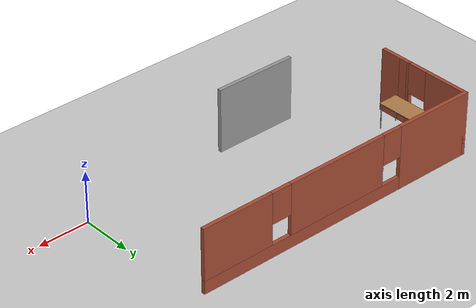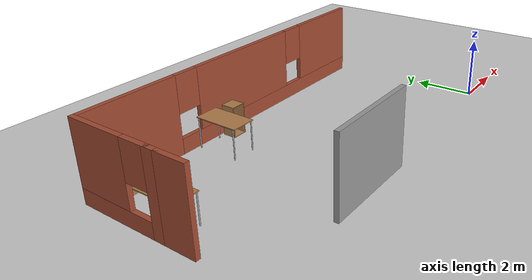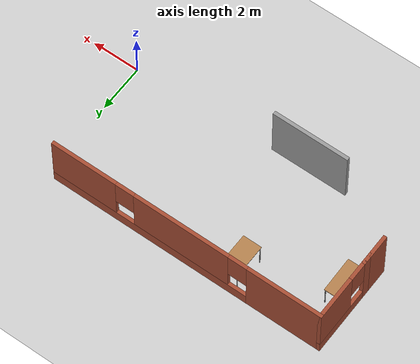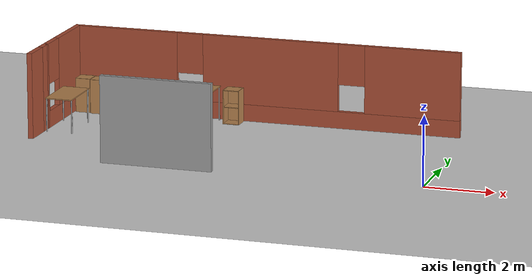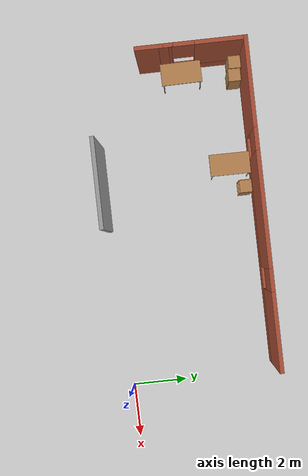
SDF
<sdf version="1.6">
 <world name="default">
  <model name="ground_plane">
   <static>1</static>
   <link name="link">
    <collision name="collision">
     <geometry><plane><normal>0 0 1</normal><size>100 100</size></plane></geometry>
     <surface><friction><ode><mu>100</mu><mu2>50</mu2></ode></friction></surface>
    </collision>
    <visual name="visual">
     <cast_shadows>0</cast_shadows>
     <geometry><plane><normal>0 0 1</normal><size>100 100</size></plane></geometry>
     <material>
      <script><uri>file://media/materials/scripts/gazebo.material</uri><name>Gazebo/Grey</name></script>
     </material>
    </visual>
   </link>
  </model>
  <model name="Building">
   <link name="Wall_37">
    <pose>-5.83944 2.575 0 0 -0 1.5708</pose>
    <visual name="Wall_37_Visual">
     <pose>0 0 1.25 0 -0 0</pose>
     <geometry><box><size>1 0.15 2.5</size></box></geometry>
     <material>
      <script><uri>file://media/materials/scripts/gazebo.material</uri><name>Gazebo/Bricks</name></script>
      <ambient>1 1 1 1</ambient>
      <shader type="pixel"/>
      <diffuse>1 1 1 1</diffuse>
      <specular>0.2 0.2 0.2 1</specular>
      <emissive>0 0 0 1</emissive>
     </material>
     <meta><layer>0</layer></meta>
    </visual>
    <collision name="Wall_37_Collision">
     <pose>0 0 1.25 0 -0 0</pose>
     <geometry><box><size>1 0.15 2.5</size></box></geometry>
     <surface>
      <friction>
       <ode><mu>1</mu><mu2>1</mu2><fdir1>0 0 0</fdir1><slip1>0</slip1><slip2>0</slip2></ode>
       <torsional>
        <coefficient>1</coefficient>
        <patch_radius>0</patch_radius>
        <surface_radius>0</surface_radius>
        <use_patch_radius>1</use_patch_radius>
        <ode><slip>0</slip></ode>
       </torsional>
      </friction>
      <bounce><restitution_coefficient>0</restitution_coefficient><threshold>1e+06</threshold></bounce>
      <contact>
       <collide_without_contact>0</collide_without_contact>
       <collide_without_contact_bitmask>1</collide_without_contact_bitmask>
       <collide_bitmask>1</collide_bitmask>
       <ode>
        <soft_cfm>0</soft_cfm>
        <soft_erp>0.2</soft_erp>
        <kp>1e+13</kp>
        <kd>1</kd>
        <max_vel>0.01</max_vel>
        <min_depth>0</min_depth>
       </ode>
       <bullet>
        <split_impulse>1</split_impulse>
        <split_impulse_penetration_threshold>-0.01</split_impulse_penetration_threshold>
        <soft_cfm>0</soft_cfm>
        <soft_erp>0.2</soft_erp>
        <kp>1e+13</kp>
        <kd>1</kd>
       </bullet>
      </contact>
     </surface>
    </collision>
   </link>
   <link name="Wall_38">
    <pose>-5.83944 3.175 0 0 -0 1.5708</pose>
    <visual name="Wall_38_Visual">
     <pose>0 0 1.25 0 -0 0</pose>
     <geometry><box><size>0.5 0.15 2.5</size></box></geometry>
     <material>
      <script><uri>file://media/materials/scripts/gazebo.material</uri><name>Gazebo/Bricks</name></script>
      <ambient>1 1 1 1</ambient>
      <shader type="pixel"/>
      <diffuse>1 1 1 1</diffuse>
      <specular>0.2 0.2 0.2 1</specular>
      <emissive>0 0 0 1</emissive>
     </material>
     <meta><layer>0</layer></meta>
    </visual>
    <collision name="Wall_38_Collision">
     <pose>0 0 1.25 0 -0 0</pose>
     <geometry><box><size>0.5 0.15 2.5</size></box></geometry>
     <surface>
      <friction>
       <ode><mu>1</mu><mu2>1</mu2><fdir1>0 0 0</fdir1><slip1>0</slip1><slip2>0</slip2></ode>
       <torsional>
        <coefficient>1</coefficient>
        <patch_radius>0</patch_radius>
        <surface_radius>0</surface_radius>
        <use_patch_radius>1</use_patch_radius>
        <ode><slip>0</slip></ode>
       </torsional>
      </friction>
      <bounce><restitution_coefficient>0</restitution_coefficient><threshold>1e+06</threshold></bounce>
      <contact>
       <collide_without_contact>0</collide_without_contact>
       <collide_without_contact_bitmask>1</collide_without_contact_bitmask>
       <collide_bitmask>1</collide_bitmask>
       <ode>
        <soft_cfm>0</soft_cfm>
        <soft_erp>0.2</soft_erp>
        <kp>1e+13</kp>
        <kd>1</kd>
        <max_vel>0.01</max_vel>
        <min_depth>0</min_depth>
       </ode>
       <bullet>
        <split_impulse>1</split_impulse>
        <split_impulse_penetration_threshold>-0.01</split_impulse_penetration_threshold>
        <soft_cfm>0</soft_cfm>
        <soft_erp>0.2</soft_erp>
        <kp>1e+13</kp>
        <kd>1</kd>
       </bullet>
      </contact>
     </surface>
    </collision>
   </link>
   <link name="Wall_44">
    <pose>-5.83944 4.65 0 0 -0 1.5708</pose>
    <visual name="Wall_44_Visual_0">
     <pose>-1.32648 0 1.25 0 -0 0</pose>
     <geometry><box><size>0.097044 0.15 2.5</size></box></geometry>
     <material>
      <script><uri>file://media/materials/scripts/gazebo.material</uri><name>Gazebo/Bricks</name></script>
      <ambient>1 1 1 1</ambient>
      <shader type="pixel"/>
      <diffuse>1 1 1 1</diffuse>
      <specular>0.2 0.2 0.2 1</specular>
      <emissive>0 0 0 1</emissive>
     </material>
     <meta><layer>0</layer></meta>
    </visual>
    <visual name="Wall_44_Visual_1">
     <pose>0.048522 0 0.25 0 -0 0</pose>
     <geometry><box><size>2.65296 0.15 0.5</size></box></geometry>
     <material>
      <script><uri>file://media/materials/scripts/gazebo.material</uri><name>Gazebo/Bricks</name></script>
      <ambient>1 1 1 1</ambient>
      <shader type="pixel"/>
      <diffuse>1 1 1 1</diffuse>
      <specular>0.2 0.2 0.2 1</specular>
      <emissive>0 0 0 1</emissive>
     </material>
     <meta><layer>0</layer></meta>
    </visual>
    <visual name="Wall_44_Visual_2">
     <pose>0.448522 0 1.5 0 -0 0</pose>
     <geometry><box><size>1.85296 0.15 2</size></box></geometry>
     <material>
      <script><uri>file://media/materials/scripts/gazebo.material</uri><name>Gazebo/Bricks</name></script>
      <ambient>1 1 1 1</ambient>
      <shader type="pixel"/>
      <diffuse>1 1 1 1</diffuse>
      <specular>0.2 0.2 0.2 1</specular>
      <emissive>0 0 0 1</emissive>
     </material>
     <meta><layer>0</layer></meta>
    </visual>
    <visual name="Wall_44_Visual_3">
     <pose>-0.877956 0 1.9 0 -0 0</pose>
     <geometry><box><size>0.8 0.15 1.2</size></box></geometry>
     <material>
      <script><uri>file://media/materials/scripts/gazebo.material</uri><name>Gazebo/Bricks</name></script>
      <ambient>1 1 1 1</ambient>
      <shader type="pixel"/>
      <diffuse>1 1 1 1</diffuse>
      <specular>0.2 0.2 0.2 1</specular>
      <emissive>0 0 0 1</emissive>
     </material>
     <meta><layer>0</layer></meta>
    </visual>
    <collision name="Wall_44_Collision_0">
     <pose>-1.32648 0 1.25 0 -0 0</pose>
     <geometry><box><size>0.097044 0.15 2.5</size></box></geometry>
     <surface>
      <friction>
       <ode><mu>1</mu><mu2>1</mu2><fdir1>0 0 0</fdir1><slip1>0</slip1><slip2>0</slip2></ode>
       <torsional>
        <coefficient>1</coefficient>
        <patch_radius>0</patch_radius>
        <surface_radius>0</surface_radius>
        <use_patch_radius>1</use_patch_radius>
        <ode><slip>0</slip></ode>
       </torsional>
      </friction>
      <bounce><restitution_coefficient>0</restitution_coefficient><threshold>1e+06</threshold></bounce>
      <contact>
       <collide_without_contact>0</collide_without_contact>
       <collide_without_contact_bitmask>1</collide_without_contact_bitmask>
       <collide_bitmask>1</collide_bitmask>
       <ode>
        <soft_cfm>0</soft_cfm>
        <soft_erp>0.2</soft_erp>
        <kp>1e+13</kp>
        <kd>1</kd>
        <max_vel>0.01</max_vel>
        <min_depth>0</min_depth>
       </ode>
       <bullet>
        <split_impulse>1</split_impulse>
        <split_impulse_penetration_threshold>-0.01</split_impulse_penetration_threshold>
        <soft_cfm>0</soft_cfm>
        <soft_erp>0.2</soft_erp>
        <kp>1e+13</kp>
        <kd>1</kd>
       </bullet>
      </contact>
     </surface>
    </collision>
    <collision name="Wall_44_Collision_1">
     <pose>0.048522 0 0.25 0 -0 0</pose>
     <geometry><box><size>2.65296 0.15 0.5</size></box></geometry>
     <surface>
      <friction>
       <ode><mu>1</mu><mu2>1</mu2><fdir1>0 0 0</fdir1><slip1>0</slip1><slip2>0</slip2></ode>
       <torsional>
        <coefficient>1</coefficient>
        <patch_radius>0</patch_radius>
        <surface_radius>0</surface_radius>
        <use_patch_radius>1</use_patch_radius>
        <ode><slip>0</slip></ode>
       </torsional>
      </friction>
      <bounce><restitution_coefficient>0</restitution_coefficient><threshold>1e+06</threshold></bounce>
      <contact>
       <collide_without_contact>0</collide_without_contact>
       <collide_without_contact_bitmask>1</collide_without_contact_bitmask>
       <collide_bitmask>1</collide_bitmask>
       <ode>
        <soft_cfm>0</soft_cfm>
        <soft_erp>0.2</soft_erp>
        <kp>1e+13</kp>
        <kd>1</kd>
        <max_vel>0.01</max_vel>
        <min_depth>0</min_depth>
       </ode>
       <bullet>
        <split_impulse>1</split_impulse>
        <split_impulse_penetration_threshold>-0.01</split_impulse_penetration_threshold>
        <soft_cfm>0</soft_cfm>
        <soft_erp>0.2</soft_erp>
        <kp>1e+13</kp>
        <kd>1</kd>
       </bullet>
      </contact>
     </surface>
    </collision>
    <collision name="Wall_44_Collision_2">
     <pose>0.448522 0 1.5 0 -0 0</pose>
     <geometry><box><size>1.85296 0.15 2</size></box></geometry>
     <surface>
      <friction>
       <ode><mu>1</mu><mu2>1</mu2><fdir1>0 0 0</fdir1><slip1>0</slip1><slip2>0</slip2></ode>
       <torsional>
        <coefficient>1</coefficient>
        <patch_radius>0</patch_radius>
        <surface_radius>0</surface_radius>
        <use_patch_radius>1</use_patch_radius>
        <ode><slip>0</slip></ode>
       </torsional>
      </friction>
      <bounce><restitution_coefficient>0</restitution_coefficient><threshold>1e+06</threshold></bounce>
      <contact>
       <collide_without_contact>0</collide_without_contact>
       <collide_without_contact_bitmask>1</collide_without_contact_bitmask>
       <collide_bitmask>1</collide_bitmask>
       <ode>
        <soft_cfm>0</soft_cfm>
        <soft_erp>0.2</soft_erp>
        <kp>1e+13</kp>
        <kd>1</kd>
        <max_vel>0.01</max_vel>
        <min_depth>0</min_depth>
       </ode>
       <bullet>
        <split_impulse>1</split_impulse>
        <split_impulse_penetration_threshold>-0.01</split_impulse_penetration_threshold>
        <soft_cfm>0</soft_cfm>
        <soft_erp>0.2</soft_erp>
        <kp>1e+13</kp>
        <kd>1</kd>
       </bullet>
      </contact>
     </surface>
    </collision>
    <collision name="Wall_44_Collision_3">
     <pose>-0.877956 0 1.9 0 -0 0</pose>
     <geometry><box><size>0.8 0.15 1.2</size></box></geometry>
     <surface>
      <friction>
       <ode><mu>1</mu><mu2>1</mu2><fdir1>0 0 0</fdir1><slip1>0</slip1><slip2>0</slip2></ode>
       <torsional>
        <coefficient>1</coefficient>
        <patch_radius>0</patch_radius>
        <surface_radius>0</surface_radius>
        <use_patch_radius>1</use_patch_radius>
        <ode><slip>0</slip></ode>
       </torsional>
      </friction>
      <bounce><restitution_coefficient>0</restitution_coefficient><threshold>1e+06</threshold></bounce>
      <contact>
       <collide_without_contact>0</collide_without_contact>
       <collide_without_contact_bitmask>1</collide_without_contact_bitmask>
       <collide_bitmask>1</collide_bitmask>
       <ode>
        <soft_cfm>0</soft_cfm>
        <soft_erp>0.2</soft_erp>
        <kp>1e+13</kp>
        <kd>1</kd>
        <max_vel>0.01</max_vel>
        <min_depth>0</min_depth>
       </ode>
       <bullet>
        <split_impulse>1</split_impulse>
        <split_impulse_penetration_threshold>-0.01</split_impulse_penetration_threshold>
        <soft_cfm>0</soft_cfm>
        <soft_erp>0.2</soft_erp>
        <kp>1e+13</kp>
        <kd>1</kd>
       </bullet>
      </contact>
     </surface>
    </collision>
   </link>
   <link name="Wall_45">
    <pose>-0.039438 5.95 0 0 -0 0</pose>
    <visual name="Wall_45_Visual_0">
     <pose>-4.27757 0 1.25 0 -0 0</pose>
     <geometry><box><size>3.19486 0.15 2.5</size></box></geometry>
     <material>
      <script><uri>file://media/materials/scripts/gazebo.material</uri><name>Gazebo/Bricks</name></script>
      <ambient>1 1 1 1</ambient>
      <shader type="pixel"/>
      <diffuse>1 1 1 1</diffuse>
      <specular>0.2 0.2 0.2 1</specular>
      <emissive>0 0 0 1</emissive>
     </material>
     <meta><layer>0</layer></meta>
    </visual>
    <visual name="Wall_45_Visual_1">
     <pose>1.59743 0 0.25 0 -0 0</pose>
     <geometry><box><size>8.55514 0.15 0.5</size></box></geometry>
     <material>
      <script><uri>file://media/materials/scripts/gazebo.material</uri><name>Gazebo/Bricks</name></script>
      <ambient>1 1 1 1</ambient>
      <shader type="pixel"/>
      <diffuse>1 1 1 1</diffuse>
      <specular>0.2 0.2 0.2 1</specular>
      <emissive>0 0 0 1</emissive>
     </material>
     <meta><layer>0</layer></meta>
    </visual>
    <visual name="Wall_45_Visual_2">
     <pose>0.177134 0 1.5 0 -0 0</pose>
     <geometry><box><size>4.11454 0.15 2</size></box></geometry>
     <material>
      <script><uri>file://media/materials/scripts/gazebo.material</uri><name>Gazebo/Bricks</name></script>
      <ambient>1 1 1 1</ambient>
      <shader type="pixel"/>
      <diffuse>1 1 1 1</diffuse>
      <specular>0.2 0.2 0.2 1</specular>
      <emissive>0 0 0 1</emissive>
     </material>
     <meta><layer>0</layer></meta>
    </visual>
    <visual name="Wall_45_Visual_3">
     <pose>4.4547 0 1.5 0 -0 0</pose>
     <geometry><box><size>2.8406 0.15 2</size></box></geometry>
     <material>
      <script><uri>file://media/materials/scripts/gazebo.material</uri><name>Gazebo/Bricks</name></script>
      <ambient>1 1 1 1</ambient>
      <shader type="pixel"/>
      <diffuse>1 1 1 1</diffuse>
      <specular>0.2 0.2 0.2 1</specular>
      <emissive>0 0 0 1</emissive>
     </material>
     <meta><layer>0</layer></meta>
    </visual>
    <visual name="Wall_45_Visual_4">
     <pose>-2.28014 0 1.9 0 -0 0</pose>
     <geometry><box><size>0.8 0.15 1.2</size></box></geometry>
     <material>
      <script><uri>file://media/materials/scripts/gazebo.material</uri><name>Gazebo/Bricks</name></script>
      <ambient>1 1 1 1</ambient>
      <shader type="pixel"/>
      <diffuse>1 1 1 1</diffuse>
      <specular>0.2 0.2 0.2 1</specular>
      <emissive>0 0 0 1</emissive>
     </material>
     <meta><layer>0</layer></meta>
    </visual>
    <visual name="Wall_45_Visual_5">
     <pose>2.6344 0 1.9 0 -0 0</pose>
     <geometry><box><size>0.8 0.15 1.2</size></box></geometry>
     <material>
      <script><uri>file://media/materials/scripts/gazebo.material</uri><name>Gazebo/Bricks</name></script>
      <ambient>1 1 1 1</ambient>
      <shader type="pixel"/>
      <diffuse>1 1 1 1</diffuse>
      <specular>0.2 0.2 0.2 1</specular>
      <emissive>0 0 0 1</emissive>
     </material>
     <meta><layer>0</layer></meta>
    </visual>
    <collision name="Wall_45_Collision_4">
     <pose>-2.28014 0 1.9 0 -0 0</pose>
     <geometry><box><size>0.8 0.15 1.2</size></box></geometry>
     <surface>
      <friction>
       <ode><mu>1</mu><mu2>1</mu2><fdir1>0 0 0</fdir1><slip1>0</slip1><slip2>0</slip2></ode>
       <torsional>
        <coefficient>1</coefficient>
        <patch_radius>0</patch_radius>
        <surface_radius>0</surface_radius>
        <use_patch_radius>1</use_patch_radius>
        <ode><slip>0</slip></ode>
       </torsional>
      </friction>
      <bounce><restitution_coefficient>0</restitution_coefficient><threshold>1e+06</threshold></bounce>
      <contact>
       <collide_without_contact>0</collide_without_contact>
       <collide_without_contact_bitmask>1</collide_without_contact_bitmask>
       <collide_bitmask>1</collide_bitmask>
       <ode>
        <soft_cfm>0</soft_cfm>
        <soft_erp>0.2</soft_erp>
        <kp>1e+13</kp>
        <kd>1</kd>
        <max_vel>0.01</max_vel>
        <min_depth>0</min_depth>
       </ode>
       <bullet>
        <split_impulse>1</split_impulse>
        <split_impulse_penetration_threshold>-0.01</split_impulse_penetration_threshold>
        <soft_cfm>0</soft_cfm>
        <soft_erp>0.2</soft_erp>
        <kp>1e+13</kp>
        <kd>1</kd>
       </bullet>
      </contact>
     </surface>
    </collision>
    <collision name="Wall_45_Collision_5">
     <pose>2.6344 0 1.9 0 -0 0</pose>
     <geometry><box><size>0.8 0.15 1.2</size></box></geometry>
     <surface>
      <friction>
       <ode><mu>1</mu><mu2>1</mu2><fdir1>0 0 0</fdir1><slip1>0</slip1><slip2>0</slip2></ode>
       <torsional>
        <coefficient>1</coefficient>
        <patch_radius>0</patch_radius>
        <surface_radius>0</surface_radius>
        <use_patch_radius>1</use_patch_radius>
        <ode><slip>0</slip></ode>
       </torsional>
      </friction>
      <bounce><restitution_coefficient>0</restitution_coefficient><threshold>1e+06</threshold></bounce>
      <contact>
       <collide_without_contact>0</collide_without_contact>
       <collide_without_contact_bitmask>1</collide_without_contact_bitmask>
       <collide_bitmask>1</collide_bitmask>
       <ode>
        <soft_cfm>0</soft_cfm>
        <soft_erp>0.2</soft_erp>
        <kp>1e+13</kp>
        <kd>1</kd>
        <max_vel>0.01</max_vel>
        <min_depth>0</min_depth>
       </ode>
       <bullet>
        <split_impulse>1</split_impulse>
        <split_impulse_penetration_threshold>-0.01</split_impulse_penetration_threshold>
        <soft_cfm>0</soft_cfm>
        <soft_erp>0.2</soft_erp>
        <kp>1e+13</kp>
        <kd>1</kd>
       </bullet>
      </contact>
     </surface>
    </collision>
    <collision name="Wall_45_Collision_0">
     <pose>-4.27757 0 1.25 0 -0 0</pose>
     <geometry><box><size>3.19486 0.15 2.5</size></box></geometry>
     <surface>
      <friction>
       <ode><mu>1</mu><mu2>1</mu2><fdir1>0 0 0</fdir1><slip1>0</slip1><slip2>0</slip2></ode>
       <torsional>
        <coefficient>1</coefficient>
        <patch_radius>0</patch_radius>
        <surface_radius>0</surface_radius>
        <use_patch_radius>1</use_patch_radius>
        <ode><slip>0</slip></ode>
       </torsional>
      </friction>
      <bounce><restitution_coefficient>0</restitution_coefficient><threshold>1e+06</threshold></bounce>
      <contact>
       <collide_without_contact>0</collide_without_contact>
       <collide_without_contact_bitmask>1</collide_without_contact_bitmask>
       <collide_bitmask>1</collide_bitmask>
       <ode>
        <soft_cfm>0</soft_cfm>
        <soft_erp>0.2</soft_erp>
        <kp>1e+13</kp>
        <kd>1</kd>
        <max_vel>0.01</max_vel>
        <min_depth>0</min_depth>
       </ode>
       <bullet>
        <split_impulse>1</split_impulse>
        <split_impulse_penetration_threshold>-0.01</split_impulse_penetration_threshold>
        <soft_cfm>0</soft_cfm>
        <soft_erp>0.2</soft_erp>
        <kp>1e+13</kp>
        <kd>1</kd>
       </bullet>
      </contact>
     </surface>
    </collision>
    <collision name="Wall_45_Collision_1">
     <pose>1.59743 0 0.25 0 -0 0</pose>
     <geometry><box><size>8.55514 0.15 0.5</size></box></geometry>
     <surface>
      <friction>
       <ode><mu>1</mu><mu2>1</mu2><fdir1>0 0 0</fdir1><slip1>0</slip1><slip2>0</slip2></ode>
       <torsional>
        <coefficient>1</coefficient>
        <patch_radius>0</patch_radius>
        <surface_radius>0</surface_radius>
        <use_patch_radius>1</use_patch_radius>
        <ode><slip>0</slip></ode>
       </torsional>
      </friction>
      <bounce><restitution_coefficient>0</restitution_coefficient><threshold>1e+06</threshold></bounce>
      <contact>
       <collide_without_contact>0</collide_without_contact>
       <collide_without_contact_bitmask>1</collide_without_contact_bitmask>
       <collide_bitmask>1</collide_bitmask>
       <ode>
        <soft_cfm>0</soft_cfm>
        <soft_erp>0.2</soft_erp>
        <kp>1e+13</kp>
        <kd>1</kd>
        <max_vel>0.01</max_vel>
        <min_depth>0</min_depth>
       </ode>
       <bullet>
        <split_impulse>1</split_impulse>
        <split_impulse_penetration_threshold>-0.01</split_impulse_penetration_threshold>
        <soft_cfm>0</soft_cfm>
        <soft_erp>0.2</soft_erp>
        <kp>1e+13</kp>
        <kd>1</kd>
       </bullet>
      </contact>
     </surface>
    </collision>
    <collision name="Wall_45_Collision_3">
     <pose>4.4547 0 1.5 0 -0 0</pose>
     <geometry><box><size>2.8406 0.15 2</size></box></geometry>
     <surface>
      <friction>
       <ode><mu>1</mu><mu2>1</mu2><fdir1>0 0 0</fdir1><slip1>0</slip1><slip2>0</slip2></ode>
       <torsional>
        <coefficient>1</coefficient>
        <patch_radius>0</patch_radius>
        <surface_radius>0</surface_radius>
        <use_patch_radius>1</use_patch_radius>
        <ode><slip>0</slip></ode>
       </torsional>
      </friction>
      <bounce><restitution_coefficient>0</restitution_coefficient><threshold>1e+06</threshold></bounce>
      <contact>
       <collide_without_contact>0</collide_without_contact>
       <collide_without_contact_bitmask>1</collide_without_contact_bitmask>
       <collide_bitmask>1</collide_bitmask>
       <ode>
        <soft_cfm>0</soft_cfm>
        <soft_erp>0.2</soft_erp>
        <kp>1e+13</kp>
        <kd>1</kd>
        <max_vel>0.01</max_vel>
        <min_depth>0</min_depth>
       </ode>
       <bullet>
        <split_impulse>1</split_impulse>
        <split_impulse_penetration_threshold>-0.01</split_impulse_penetration_threshold>
        <soft_cfm>0</soft_cfm>
        <soft_erp>0.2</soft_erp>
        <kp>1e+13</kp>
        <kd>1</kd>
       </bullet>
      </contact>
     </surface>
    </collision>
    <collision name="Wall_45_Collision_2">
     <pose>0.177134 0 1.5 0 -0 0</pose>
     <geometry><box><size>4.11454 0.15 2</size></box></geometry>
     <surface>
      <friction>
       <ode><mu>1</mu><mu2>1</mu2><fdir1>0 0 0</fdir1><slip1>0</slip1><slip2>0</slip2></ode>
       <torsional>
        <coefficient>1</coefficient>
        <patch_radius>0</patch_radius>
        <surface_radius>0</surface_radius>
        <use_patch_radius>1</use_patch_radius>
        <ode><slip>0</slip></ode>
       </torsional>
      </friction>
      <bounce><restitution_coefficient>0</restitution_coefficient><threshold>1e+06</threshold></bounce>
      <contact>
       <collide_without_contact>0</collide_without_contact>
       <collide_without_contact_bitmask>1</collide_without_contact_bitmask>
       <collide_bitmask>1</collide_bitmask>
       <ode>
        <soft_cfm>0</soft_cfm>
        <soft_erp>0.2</soft_erp>
        <kp>1e+13</kp>
        <kd>1</kd>
        <max_vel>0.01</max_vel>
        <min_depth>0</min_depth>
       </ode>
       <bullet>
        <split_impulse>1</split_impulse>
        <split_impulse_penetration_threshold>-0.01</split_impulse_penetration_threshold>
        <soft_cfm>0</soft_cfm>
        <soft_erp>0.2</soft_erp>
        <kp>1e+13</kp>
        <kd>1</kd>
       </bullet>
      </contact>
     </surface>
    </collision>
   </link>
   <link name="Wall_5">
    <pose>-1.38944 0.3 0 0 -0 3.14159</pose>
    <visual name="Wall_5_Visual">
     <pose>0 0 1.25 0 -0 0</pose>
     <geometry><box><size>3.25 0.15 2.5</size></box></geometry>
     <material>
      <script><uri>file://media/materials/scripts/gazebo.material</uri><name>Gazebo/Grey</name></script>
      <ambient>1 1 1 1</ambient>
      <shader type="pixel"/>
      <diffuse>0.7 0.7 0.7 1</diffuse>
      <specular>0.01 0.01 0.01 1</specular>
      <emissive>0 0 0 1</emissive>
     </material>
     <meta><layer>0</layer></meta>
    </visual>
    <collision name="Wall_5_Collision">
     <pose>0 0 1.25 0 -0 0</pose>
     <geometry><box><size>3.25 0.15 2.5</size></box></geometry>
     <surface>
      <friction>
       <ode><mu>1</mu><mu2>1</mu2><fdir1>0 0 0</fdir1><slip1>0</slip1><slip2>0</slip2></ode>
       <torsional>
        <coefficient>1</coefficient>
        <patch_radius>0</patch_radius>
        <surface_radius>0</surface_radius>
        <use_patch_radius>1</use_patch_radius>
        <ode><slip>0</slip></ode>
       </torsional>
      </friction>
      <bounce><restitution_coefficient>0</restitution_coefficient><threshold>1e+06</threshold></bounce>
      <contact>
       <collide_without_contact>0</collide_without_contact>
       <collide_without_contact_bitmask>1</collide_without_contact_bitmask>
       <collide_bitmask>1</collide_bitmask>
       <ode>
        <soft_cfm>0</soft_cfm>
        <soft_erp>0.2</soft_erp>
        <kp>1e+13</kp>
        <kd>1</kd>
        <max_vel>0.01</max_vel>
        <min_depth>0</min_depth>
       </ode>
       <bullet>
        <split_impulse>1</split_impulse>
        <split_impulse_penetration_threshold>-0.01</split_impulse_penetration_threshold>
        <soft_cfm>0</soft_cfm>
        <soft_erp>0.2</soft_erp>
        <kp>1e+13</kp>
        <kd>1</kd>
       </bullet>
      </contact>
     </surface>
    </collision>
   </link>
   <static>1</static>
   <pose>-6.1852 -0.576906 0 0 -0 0</pose>
  </model>
  <model name="cabinet">
   <static>1</static>
   <link name="cabinet_bottom_plate">
    <inertial>
     <pose>0 0 -1 0 -0 0</pose>
     <inertia><ixx>2.05</ixx><ixy>0</ixy><ixz>0</ixz><iyy>2.05</iyy><iyz>0</iyz><izz>2.05</izz></inertia>
     <mass>25</mass>
    </inertial>
    <collision name="cabinet_bottom_plate_geom">
     <pose>0 0 0.01 0 -0 0</pose>
     <geometry><box><size>0.45 0.45 0.02</size></box></geometry>
    </collision>
    <visual name="cabinet_bottom_plate_geom_visual">
     <pose>0 0 0.01 0 -0 0</pose>
     <geometry><box><size>0.45 0.45 0.02</size></box></geometry>
     <material>
      <script><uri>file://media/materials/scripts/gazebo.material</uri><name>Gazebo/Wood</name></script>
     </material>
    </visual>
    <collision name="cabinet_bottom_plate_geom_cabinet_back_plate">
     <pose>0.235 0 0.51 0 -0 0</pose>
     <geometry><box><size>0.02 0.45 1.02</size></box></geometry>
    </collision>
    <visual name="cabinet_bottom_plate_geom_cabinet_back_plate_visual">
     <pose>0.235 0 0.51 0 -0 0</pose>
     <geometry><box><size>0.02 0.45 1.02</size></box></geometry>
     <material>
      <script><uri>file://media/materials/scripts/gazebo.material</uri><name>Gazebo/Wood</name></script>
     </material>
    </visual>
    <collision name="cabinet_bottom_plate_geom_cabinet_left_plate">
     <pose>0 0.235 0.51 0 -0 0</pose>
     <geometry><box><size>0.45 0.02 1.02</size></box></geometry>
    </collision>
    <visual name="cabinet_bottom_plate_geom_cabinet_left_plate_visual">
     <pose>0 0.235 0.51 0 -0 0</pose>
     <geometry><box><size>0.45 0.02 1.02</size></box></geometry>
     <material>
      <script><uri>file://media/materials/scripts/gazebo.material</uri><name>Gazebo/Wood</name></script>
     </material>
    </visual>
    <collision name="cabinet_bottom_plate_geom_cabinet_middle_plate">
     <pose>0 0 0.51 0 -0 0</pose>
     <geometry><box><size>0.45 0.45 0.02</size></box></geometry>
    </collision>
    <visual name="cabinet_bottom_plate_geom_cabinet_middle_plate_visual">
     <pose>0 0 0.51 0 -0 0</pose>
     <geometry><box><size>0.45 0.45 0.02</size></box></geometry>
     <material>
      <script><uri>file://media/materials/scripts/gazebo.material</uri><name>Gazebo/Wood</name></script>
     </material>
    </visual>
    <collision name="cabinet_bottom_plate_geom_cabinet_right_plate">
     <pose>0 -0.235 0.51 0 -0 0</pose>
     <geometry><box><size>0.45 0.02 1.02</size></box></geometry>
    </collision>
    <visual name="cabinet_bottom_plate_geom_cabinet_right_plate_visual">
     <pose>0 -0.235 0.51 0 -0 0</pose>
     <geometry><box><size>0.45 0.02 1.02</size></box></geometry>
     <material>
      <script><uri>file://media/materials/scripts/gazebo.material</uri><name>Gazebo/Wood</name></script>
     </material>
    </visual>
    <collision name="cabinet_bottom_plate_geom_cabinet_top_plate">
     <pose>0 0 1.01 0 -0 0</pose>
     <geometry><box><size>0.45 0.45 0.02</size></box></geometry>
    </collision>
    <visual name="cabinet_bottom_plate_geom_cabinet_top_plate_visual">
     <pose>0 0 1.01 0 -0 0</pose>
     <geometry><box><size>0.45 0.45 0.02</size></box></geometry>
     <material>
      <script><uri>file://media/materials/scripts/gazebo.material</uri><name>Gazebo/Wood</name></script>
     </material>
    </visual>
   </link>
   <pose>-11.6909 5.06677 0 0 -0 0</pose>
  </model>
  <model name="cabinet_0">
   <static>1</static>
   <link name="cabinet_bottom_plate">
    <inertial>
     <pose>0 0 -1 0 -0 0</pose>
     <inertia><ixx>2.05</ixx><ixy>0</ixy><ixz>0</ixz><iyy>2.05</iyy><iyz>0</iyz><izz>2.05</izz></inertia>
     <mass>25</mass>
    </inertial>
    <collision name="cabinet_bottom_plate_geom">
     <pose>0 0 0.01 0 -0 0</pose>
     <geometry><box><size>0.45 0.45 0.02</size></box></geometry>
    </collision>
    <visual name="cabinet_bottom_plate_geom_visual">
     <pose>0 0 0.01 0 -0 0</pose>
     <geometry><box><size>0.45 0.45 0.02</size></box></geometry>
     <material>
      <script><uri>file://media/materials/scripts/gazebo.material</uri><name>Gazebo/Wood</name></script>
     </material>
    </visual>
    <collision name="cabinet_bottom_plate_geom_cabinet_back_plate">
     <pose>0.235 0 0.51 0 -0 0</pose>
     <geometry><box><size>0.02 0.45 1.02</size></box></geometry>
    </collision>
    <visual name="cabinet_bottom_plate_geom_cabinet_back_plate_visual">
     <pose>0.235 0 0.51 0 -0 0</pose>
     <geometry><box><size>0.02 0.45 1.02</size></box></geometry>
     <material>
      <script><uri>file://media/materials/scripts/gazebo.material</uri><name>Gazebo/Wood</name></script>
     </material>
    </visual>
    <collision name="cabinet_bottom_plate_geom_cabinet_left_plate">
     <pose>0 0.235 0.51 0 -0 0</pose>
     <geometry><box><size>0.45 0.02 1.02</size></box></geometry>
    </collision>
    <visual name="cabinet_bottom_plate_geom_cabinet_left_plate_visual">
     <pose>0 0.235 0.51 0 -0 0</pose>
     <geometry><box><size>0.45 0.02 1.02</size></box></geometry>
     <material>
      <script><uri>file://media/materials/scripts/gazebo.material</uri><name>Gazebo/Wood</name></script>
     </material>
    </visual>
    <collision name="cabinet_bottom_plate_geom_cabinet_middle_plate">
     <pose>0 0 0.51 0 -0 0</pose>
     <geometry><box><size>0.45 0.45 0.02</size></box></geometry>
    </collision>
    <visual name="cabinet_bottom_plate_geom_cabinet_middle_plate_visual">
     <pose>0 0 0.51 0 -0 0</pose>
     <geometry><box><size>0.45 0.45 0.02</size></box></geometry>
     <material>
      <script><uri>file://media/materials/scripts/gazebo.material</uri><name>Gazebo/Wood</name></script>
     </material>
    </visual>
    <collision name="cabinet_bottom_plate_geom_cabinet_right_plate">
     <pose>0 -0.235 0.51 0 -0 0</pose>
     <geometry><box><size>0.45 0.02 1.02</size></box></geometry>
    </collision>
    <visual name="cabinet_bottom_plate_geom_cabinet_right_plate_visual">
     <pose>0 -0.235 0.51 0 -0 0</pose>
     <geometry><box><size>0.45 0.02 1.02</size></box></geometry>
     <material>
      <script><uri>file://media/materials/scripts/gazebo.material</uri><name>Gazebo/Wood</name></script>
     </material>
    </visual>
    <collision name="cabinet_bottom_plate_geom_cabinet_top_plate">
     <pose>0 0 1.01 0 -0 0</pose>
     <geometry><box><size>0.45 0.45 0.02</size></box></geometry>
    </collision>
    <visual name="cabinet_bottom_plate_geom_cabinet_top_plate_visual">
     <pose>0 0 1.01 0 -0 0</pose>
     <geometry><box><size>0.45 0.45 0.02</size></box></geometry>
     <material>
      <script><uri>file://media/materials/scripts/gazebo.material</uri><name>Gazebo/Wood</name></script>
     </material>
    </visual>
   </link>
   <pose>-11.2125 5.01748 0 0 -0 0</pose>
  </model>
  <model name="table">
   <static>1</static>
   <link name="link">
    <collision name="surface">
     <pose>0 0 1 0 -0 0</pose>
     <geometry><box><size>1.5 0.8 0.03</size></box></geometry>
     <surface><friction><ode><mu>0.6</mu><mu2>0.6</mu2></ode></friction></surface>
    </collision>
    <visual name="visual1">
     <pose>0 0 1 0 -0 0</pose>
     <geometry><box><size>1.5 0.8 0.03</size></box></geometry>
     <material>
      <script><uri>file://media/materials/scripts/gazebo.material</uri><name>Gazebo/Wood</name></script>
     </material>
    </visual>
    <collision name="front_left_leg">
     <pose>0.68 0.38 0.5 0 -0 0</pose>
     <geometry><cylinder><radius>0.02</radius><length>1</length></cylinder></geometry>
    </collision>
    <visual name="front_left_leg">
     <pose>0.68 0.38 0.5 0 -0 0</pose>
     <geometry><cylinder><radius>0.02</radius><length>1</length></cylinder></geometry>
     <material>
      <script><uri>file://media/materials/scripts/gazebo.material</uri><name>Gazebo/Grey</name></script>
     </material>
    </visual>
    <collision name="front_right_leg">
     <pose>0.68 -0.38 0.5 0 -0 0</pose>
     <geometry><cylinder><radius>0.02</radius><length>1</length></cylinder></geometry>
    </collision>
    <visual name="front_right_leg">
     <pose>0.68 -0.38 0.5 0 -0 0</pose>
     <geometry><cylinder><radius>0.02</radius><length>1</length></cylinder></geometry>
     <material>
      <script><uri>file://media/materials/scripts/gazebo.material</uri><name>Gazebo/Grey</name></script>
     </material>
    </visual>
    <collision name="back_right_leg">
     <pose>-0.68 -0.38 0.5 0 -0 0</pose>
     <geometry><cylinder><radius>0.02</radius><length>1</length></cylinder></geometry>
    </collision>
    <visual name="back_right_leg">
     <pose>-0.68 -0.38 0.5 0 -0 0</pose>
     <geometry><cylinder><radius>0.02</radius><length>1</length></cylinder></geometry>
     <material>
      <script><uri>file://media/materials/scripts/gazebo.material</uri><name>Gazebo/Grey</name></script>
     </material>
    </visual>
    <collision name="back_left_leg">
     <pose>-0.68 0.38 0.5 0 -0 0</pose>
     <geometry><cylinder><radius>0.02</radius><length>1</length></cylinder></geometry>
    </collision>
    <visual name="back_left_leg">
     <pose>-0.68 0.38 0.5 0 -0 0</pose>
     <geometry><cylinder><radius>0.02</radius><length>1</length></cylinder></geometry>
     <material>
      <script><uri>file://media/materials/scripts/gazebo.material</uri><name>Gazebo/Grey</name></script>
     </material>
    </visual>
   </link>
   <pose>-11.4939 3.06074 0 0.002422 0.000782 1.58451</pose>
  </model>
  <model name="cabinet_1">
   <static>1</static>
   <link name="cabinet_bottom_plate">
    <inertial>
     <pose>0 0 -1 0 -0 0</pose>
     <inertia><ixx>2.05</ixx><ixy>0</ixy><ixz>0</ixz><iyy>2.05</iyy><iyz>0</iyz><izz>2.05</izz></inertia>
     <mass>25</mass>
    </inertial>
    <collision name="cabinet_bottom_plate_geom">
     <pose>0 0 0.01 0 -0 0</pose>
     <geometry><box><size>0.45 0.45 0.02</size></box></geometry>
    </collision>
    <visual name="cabinet_bottom_plate_geom_visual">
     <pose>0 0 0.01 0 -0 0</pose>
     <geometry><box><size>0.45 0.45 0.02</size></box></geometry>
     <material>
      <script><uri>file://media/materials/scripts/gazebo.material</uri><name>Gazebo/Wood</name></script>
     </material>
    </visual>
    <collision name="cabinet_bottom_plate_geom_cabinet_back_plate">
     <pose>0.235 0 0.51 0 -0 0</pose>
     <geometry><box><size>0.02 0.45 1.02</size></box></geometry>
    </collision>
    <visual name="cabinet_bottom_plate_geom_cabinet_back_plate_visual">
     <pose>0.235 0 0.51 0 -0 0</pose>
     <geometry><box><size>0.02 0.45 1.02</size></box></geometry>
     <material>
      <script><uri>file://media/materials/scripts/gazebo.material</uri><name>Gazebo/Wood</name></script>
     </material>
    </visual>
    <collision name="cabinet_bottom_plate_geom_cabinet_left_plate">
     <pose>0 0.235 0.51 0 -0 0</pose>
     <geometry><box><size>0.45 0.02 1.02</size></box></geometry>
    </collision>
    <visual name="cabinet_bottom_plate_geom_cabinet_left_plate_visual">
     <pose>0 0.235 0.51 0 -0 0</pose>
     <geometry><box><size>0.45 0.02 1.02</size></box></geometry>
     <material>
      <script><uri>file://media/materials/scripts/gazebo.material</uri><name>Gazebo/Wood</name></script>
     </material>
    </visual>
    <collision name="cabinet_bottom_plate_geom_cabinet_middle_plate">
     <pose>0 0 0.51 0 -0 0</pose>
     <geometry><box><size>0.45 0.45 0.02</size></box></geometry>
    </collision>
    <visual name="cabinet_bottom_plate_geom_cabinet_middle_plate_visual">
     <pose>0 0 0.51 0 -0 0</pose>
     <geometry><box><size>0.45 0.45 0.02</size></box></geometry>
     <material>
      <script><uri>file://media/materials/scripts/gazebo.material</uri><name>Gazebo/Wood</name></script>
     </material>
    </visual>
    <collision name="cabinet_bottom_plate_geom_cabinet_right_plate">
     <pose>0 -0.235 0.51 0 -0 0</pose>
     <geometry><box><size>0.45 0.02 1.02</size></box></geometry>
    </collision>
    <visual name="cabinet_bottom_plate_geom_cabinet_right_plate_visual">
     <pose>0 -0.235 0.51 0 -0 0</pose>
     <geometry><box><size>0.45 0.02 1.02</size></box></geometry>
     <material>
      <script><uri>file://media/materials/scripts/gazebo.material</uri><name>Gazebo/Wood</name></script>
     </material>
    </visual>
    <collision name="cabinet_bottom_plate_geom_cabinet_top_plate">
     <pose>0 0 1.01 0 -0 0</pose>
     <geometry><box><size>0.45 0.45 0.02</size></box></geometry>
    </collision>
    <visual name="cabinet_bottom_plate_geom_cabinet_top_plate_visual">
     <pose>0 0 1.01 0 -0 0</pose>
     <geometry><box><size>0.45 0.45 0.02</size></box></geometry>
     <material>
      <script><uri>file://media/materials/scripts/gazebo.material</uri><name>Gazebo/Wood</name></script>
     </material>
    </visual>
   </link>
   <pose>-7.07284 4.98871 0 0 -0 1.56944</pose>
  </model>
  <model name="table_0_clone_0">
   <static>1</static>
   <link name="link">
    <collision name="surface">
     <pose>0 0 1 0 -0 0</pose>
     <geometry><box><size>1.5 0.8 0.03</size></box></geometry>
     <surface><friction><ode><mu>0.6</mu><mu2>0.6</mu2></ode></friction></surface>
    </collision>
    <visual name="visual1">
     <pose>0 0 1 0 -0 0</pose>
     <geometry><box><size>1.5 0.8 0.03</size></box></geometry>
     <material>
      <script><uri>file://media/materials/scripts/gazebo.material</uri><name>Gazebo/Wood</name></script>
     </material>
    </visual>
    <collision name="front_left_leg">
     <pose>0.68 0.38 0.5 0 -0 0</pose>
     <geometry><cylinder><radius>0.02</radius><length>1</length></cylinder></geometry>
    </collision>
    <visual name="front_left_leg">
     <pose>0.68 0.38 0.5 0 -0 0</pose>
     <geometry><cylinder><radius>0.02</radius><length>1</length></cylinder></geometry>
     <material>
      <script><uri>file://media/materials/scripts/gazebo.material</uri><name>Gazebo/Grey</name></script>
     </material>
    </visual>
    <collision name="front_right_leg">
     <pose>0.68 -0.38 0.5 0 -0 0</pose>
     <geometry><cylinder><radius>0.02</radius><length>1</length></cylinder></geometry>
    </collision>
    <visual name="front_right_leg">
     <pose>0.68 -0.38 0.5 0 -0 0</pose>
     <geometry><cylinder><radius>0.02</radius><length>1</length></cylinder></geometry>
     <material>
      <script><uri>file://media/materials/scripts/gazebo.material</uri><name>Gazebo/Grey</name></script>
     </material>
    </visual>
    <collision name="back_right_leg">
     <pose>-0.68 -0.38 0.5 0 -0 0</pose>
     <geometry><cylinder><radius>0.02</radius><length>1</length></cylinder></geometry>
    </collision>
    <visual name="back_right_leg">
     <pose>-0.68 -0.38 0.5 0 -0 0</pose>
     <geometry><cylinder><radius>0.02</radius><length>1</length></cylinder></geometry>
     <material>
      <script><uri>file://media/materials/scripts/gazebo.material</uri><name>Gazebo/Grey</name></script>
     </material>
    </visual>
    <collision name="back_left_leg">
     <pose>-0.68 0.38 0.5 0 -0 0</pose>
     <geometry><cylinder><radius>0.02</radius><length>1</length></cylinder></geometry>
    </collision>
    <visual name="back_left_leg">
     <pose>-0.68 0.38 0.5 0 -0 0</pose>
     <geometry><cylinder><radius>0.02</radius><length>1</length></cylinder></geometry>
     <material>
      <script><uri>file://media/materials/scripts/gazebo.material</uri><name>Gazebo/Grey</name></script>
     </material>
    </visual>
   </link>
   <pose>-7.94993 4.49516 0 0 -0 1.56462</pose>
  </model>
 </world>
</sdf>
